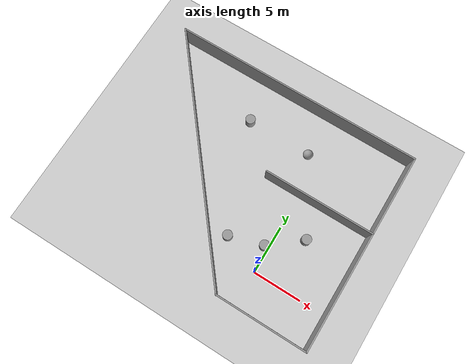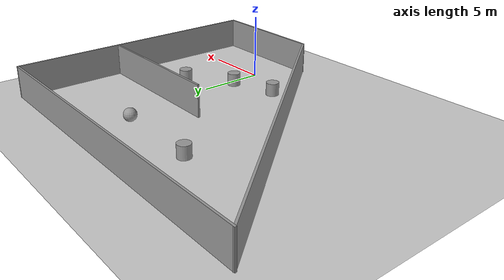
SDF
<sdf version="1.7">
 <world name="default">
  <light name="sun" type="directional">
   <pose>0 0 10 0 -0 0</pose>
   <diffuse>0.8 0.8 0.8 1</diffuse>
   <specular>0.2 0.2 0.2 1</specular>
   <attenuation>
    <range>1000</range>
    <constant>0.9</constant>
    <linear>0.01</linear>
    <quadratic>0.001</quadratic>
   </attenuation>
   <direction>-0.5 0.1 -0.9</direction>
   <spot><inner_angle>0</inner_angle><outer_angle>0</outer_angle><falloff>0</falloff></spot>
  </light>
  <model name="ground_plane">
   <static>1</static>
   <link name="link">
    <collision name="collision">
     <geometry><plane><normal>0 0 1</normal><size>100 100</size></plane></geometry>
     <surface>
      <contact><collide_bitmask>65535</collide_bitmask></contact>
      <friction><ode><mu>100</mu><mu2>50</mu2></ode></friction>
     </surface>
    </collision>
    <visual name="visual">
     <cast_shadows>0</cast_shadows>
     <geometry><plane><normal>0 0 1</normal><size>100 100</size></plane></geometry>
     <material>
      <script><uri>file://media/materials/scripts/gazebo.material</uri><name>Gazebo/Grey</name></script>
     </material>
    </visual>
   </link>
  </model>
  <gravity>0 0 -9.8</gravity>
  <magnetic_field>6e-06 2.3e-05 -4.2e-05</magnetic_field>
  <atmosphere type="adiabatic"/>
  <physics type="ode">
   <max_step_size>0.001</max_step_size>
   <real_time_factor>1</real_time_factor>
   <real_time_update_rate>1000</real_time_update_rate>
  </physics>
  <scene><ambient>0.4 0.4 0.4 1</ambient><background>0.7 0.7 0.7 1</background><shadows>1</shadows></scene>
  <spherical_coordinates>
   <surface_model>EARTH_WGS84</surface_model>
   <latitude_deg>0</latitude_deg>
   <longitude_deg>0</longitude_deg>
   <elevation>0</elevation>
   <heading_deg>0</heading_deg>
  </spherical_coordinates>
  <model name="test_sample">
   <pose>-5.55525 6.64 0 0 -0 0</pose>
   <link name="Wall_0">
    <collision name="Wall_0_Collision">
     <geometry><box><size>9.5 0.15 2.5</size></box></geometry>
     <pose>0 0 1.25 0 -0 0</pose>
    </collision>
    <visual name="Wall_0_Visual">
     <pose>0 0 1.25 0 -0 0</pose>
     <geometry><box><size>9.5 0.15 2.5</size></box></geometry>
     <material>
      <script><uri>file://media/materials/scripts/gazebo.material</uri><name>Gazebo/Grey</name></script>
      <ambient>1 1 1 1</ambient>
     </material>
     <meta><layer>0</layer></meta>
    </visual>
    <pose>8.39025 -10.3 0 0 -0 0</pose>
   </link>
   <link name="Wall_1">
    <collision name="Wall_1_Collision">
     <geometry><box><size>20.75 0.15 2.5</size></box></geometry>
     <pose>0 0 1.25 0 -0 0</pose>
    </collision>
    <visual name="Wall_1_Visual">
     <pose>0 0 1.25 0 -0 0</pose>
     <geometry><box><size>20.75 0.15 2.5</size></box></geometry>
     <material>
      <script><uri>file://media/materials/scripts/gazebo.material</uri><name>Gazebo/Grey</name></script>
      <ambient>1 1 1 1</ambient>
     </material>
     <meta><layer>0</layer></meta>
    </visual>
    <pose>13.0653 0 0 0 -0 1.5708</pose>
   </link>
   <link name="Wall_2">
    <collision name="Wall_2_Collision">
     <geometry><box><size>26.25 0.15 2.5</size></box></geometry>
     <pose>0 0 1.25 0 -0 0</pose>
    </collision>
    <visual name="Wall_2_Visual">
     <pose>0 0 1.25 0 -0 0</pose>
     <geometry><box><size>26.25 0.15 2.5</size></box></geometry>
     <material>
      <script><uri>file://media/materials/scripts/gazebo.material</uri><name>Gazebo/Grey</name></script>
      <ambient>1 1 1 1</ambient>
     </material>
     <meta><layer>0</layer></meta>
    </visual>
    <pose>0.015253 10.3 0 0 -0 3.14159</pose>
   </link>
   <link name="Wall_3">
    <collision name="Wall_3_Collision">
     <geometry><box><size>26.7004 0.15 2.5</size></box></geometry>
     <pose>0 0 1.25 0 -0 0</pose>
    </collision>
    <visual name="Wall_3_Visual">
     <pose>0 0 1.25 0 -0 0</pose>
     <geometry><box><size>26.7004 0.15 2.5</size></box></geometry>
     <material>
      <script><uri>file://media/materials/scripts/gazebo.material</uri><name>Gazebo/Grey</name></script>
      <ambient>1 1 1 1</ambient>
     </material>
     <meta><layer>0</layer></meta>
    </visual>
    <pose>-4.65975 0 0 0 -0 -0.888114</pose>
   </link>
   <link name="Wall_5">
    <collision name="Wall_5_Collision">
     <geometry><box><size>11.5 0.15 2.5</size></box></geometry>
     <pose>0 0 1.25 0 -0 0</pose>
    </collision>
    <visual name="Wall_5_Visual">
     <pose>0 0 1.25 0 -0 0</pose>
     <geometry><box><size>11.5 0.15 2.5</size></box></geometry>
     <material>
      <script><uri>file://media/materials/scripts/gazebo.material</uri><name>Gazebo/Grey</name></script>
      <ambient>1 1 1 1</ambient>
     </material>
     <meta><layer>0</layer></meta>
    </visual>
    <pose>7.35528 1.87023 0 0 -0 3.14159</pose>
   </link>
   <static>1</static>
  </model>
  <model name="unit_sphere">
   <pose>-1.44595 12.6087 0.5 0 -0 0</pose>
   <link name="link">
    <inertial>
     <mass>1</mass>
     <inertia><ixx>0.1</ixx><ixy>0</ixy><ixz>0</ixz><iyy>0.1</iyy><iyz>0</iyz><izz>0.1</izz></inertia>
    </inertial>
    <collision name="collision"><geometry><sphere><radius>0.5</radius></sphere></geometry></collision>
    <visual name="visual">
     <geometry><sphere><radius>0.5</radius></sphere></geometry>
     <material>
      <script><name>Gazebo/Grey</name><uri>file://media/materials/scripts/gazebo.material</uri></script>
     </material>
    </visual>
   </link>
  </model>
  <model name="unit_cylinder">
   <pose>2.63716 5.14308 0.499998 3e-06 -4e-06 0</pose>
   <link name="link">
    <inertial>
     <mass>1</mass>
     <inertia><ixx>0.145833</ixx><ixy>0</ixy><ixz>0</ixz><iyy>0.145833</iyy><iyz>0</iyz><izz>0.125</izz></inertia>
    </inertial>
    <collision name="collision">
     <geometry><cylinder><radius>0.5</radius><length>1</length></cylinder></geometry>
    </collision>
    <visual name="visual">
     <geometry><cylinder><radius>0.5</radius><length>1</length></cylinder></geometry>
     <material>
      <script><name>Gazebo/Grey</name><uri>file://media/materials/scripts/gazebo.material</uri></script>
     </material>
    </visual>
   </link>
  </model>
  <model name="unit_cylinder_0">
   <pose>-8.17181 12.6365 0.499992 -3e-06 -4e-06 -0</pose>
   <link name="link">
    <inertial>
     <mass>1</mass>
     <inertia><ixx>0.145833</ixx><ixy>0</ixy><ixz>0</ixz><iyy>0.145833</iyy><iyz>0</iyz><izz>0.125</izz></inertia>
    </inertial>
    <collision name="collision">
     <geometry><cylinder><radius>0.5</radius><length>1</length></cylinder></geometry>
    </collision>
    <visual name="visual">
     <geometry><cylinder><radius>0.5</radius><length>1</length></cylinder></geometry>
     <material>
      <script><name>Gazebo/Grey</name><uri>file://media/materials/scripts/gazebo.material</uri></script>
     </material>
    </visual>
   </link>
  </model>
  <model name="unit_cylinder_1">
   <pose>-3.94961 1.58243 0.499993 -3e-06 -3e-06 0</pose>
   <link name="link">
    <inertial>
     <mass>1</mass>
     <inertia><ixx>0.145833</ixx><ixy>0</ixy><ixz>0</ixz><iyy>0.145833</iyy><iyz>0</iyz><izz>0.125</izz></inertia>
    </inertial>
    <collision name="collision">
     <geometry><cylinder><radius>0.5</radius><length>1</length></cylinder></geometry>
    </collision>
    <visual name="visual">
     <geometry><cylinder><radius>0.5</radius><length>1</length></cylinder></geometry>
     <material>
      <script><name>Gazebo/Grey</name><uri>file://media/materials/scripts/gazebo.material</uri></script>
     </material>
    </visual>
   </link>
  </model>
  <model name="unit_cylinder_2">
   <pose>-0.477311 2.61076 0.499997 3e-06 4e-06 -0</pose>
   <link name="link">
    <inertial>
     <mass>1</mass>
     <inertia><ixx>0.145833</ixx><ixy>0</ixy><ixz>0</ixz><iyy>0.145833</iyy><iyz>0</iyz><izz>0.125</izz></inertia>
    </inertial>
    <collision name="collision">
     <geometry><cylinder><radius>0.5</radius><length>1</length></cylinder></geometry>
    </collision>
    <visual name="visual">
     <geometry><cylinder><radius>0.5</radius><length>1</length></cylinder></geometry>
     <material>
      <script><name>Gazebo/Grey</name><uri>file://media/materials/scripts/gazebo.material</uri></script>
     </material>
    </visual>
   </link>
  </model>
 </world>
</sdf>
